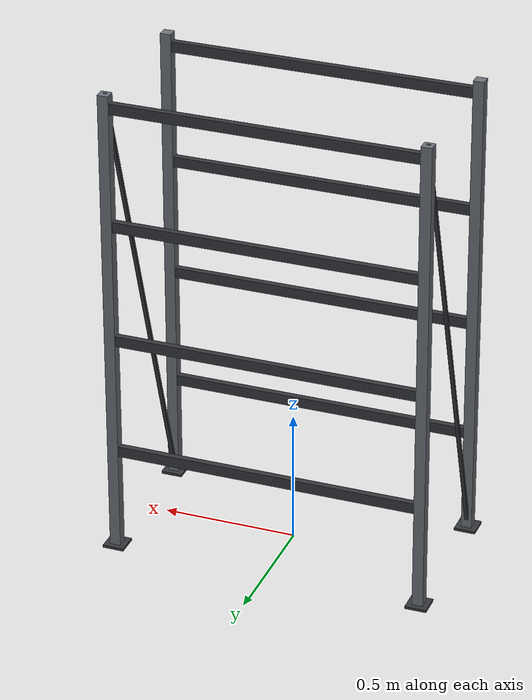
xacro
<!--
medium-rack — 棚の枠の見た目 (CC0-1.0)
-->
<?xml version="1.0"?>
<robot xmlns:xacro="http://www.ros.org/wiki/xacro" name="medium-rack-bay">
  <xacro:arg name="width" default="1.2"/>
  <xacro:arg name="depth" default="0.6"/>
  <xacro:arg name="height" default="1.8"/>
  <xacro:arg name="upright" default="0.04"/>
  <xacro:arg name="beam" default="0.04"/>
  <xacro:arg name="shelf_thickness" default="0.03"/>
  <xacro:arg name="levels" default="4"/>

  <xacro:property name="w" value="$(arg width)"/>
  <xacro:property name="d" value="$(arg depth)"/>
  <xacro:property name="h" value="$(arg height)"/>
  <xacro:property name="u" value="$(arg upright)"/>
  <xacro:property name="bm" value="$(arg beam)"/>
  <xacro:property name="st" value="$(arg shelf_thickness)"/>
  <xacro:property name="n" value="$(arg levels)"/>
  <!-- ブレースは側面の対角。長さも傾きも奥行と高さから出る
       (xurdf 0.6.4 以降。それ以前は atan2 が無く、生成器が渡していた) -->
  <xacro:property name="run" value="${d - u}"/>
  <xacro:property name="brace_len" value="${hypot(run, h)}"/>
  <xacro:property name="tilt" value="${atan2(h, run)}"/>

  <material name="steel"><color rgba="0.42 0.44 0.47 1"/></material>
  <material name="dark"><color rgba="0.20 0.21 0.23 1"/></material>

  <link name="bay"/>

  <xacro:macro name="box_part" params="name size xyz rpy:='0 0 0' mat">
    <link name="${name}">
      <visual>
        <origin xyz="${xyz}" rpy="${rpy}"/>
        <geometry><box size="${size}"/></geometry>
        <material name="${mat}"/>
      </visual>
    </link>
    <joint name="j_${name}" type="fixed"><parent link="bay"/><child link="${name}"/></joint>
  </xacro:macro>

  <!-- 支柱と足 -->
  <xacro:macro name="corner" params="tag sx sy">
    <xacro:box_part name="upright_${tag}" size="${u} ${u} ${h}"
                    xyz="${sx * (w/2 - u/2)} ${sy * (d/2 - u/2)} ${h/2}" mat="steel"/>
    <xacro:box_part name="foot_${tag}" size="${u*2} ${u*2} ${u/4}"
                    xyz="${sx * (w/2 - u/2)} ${sy * (d/2 - u/2)} ${u/8}" mat="dark"/>
  </xacro:macro>
  <xacro:corner tag="0" sx="-1" sy="-1"/>
  <xacro:corner tag="1" sx="1" sy="-1"/>
  <xacro:corner tag="2" sx="1" sy="1"/>
  <xacro:corner tag="3" sx="-1" sy="1"/>

  <!-- 側面のブレース -->
  <xacro:box_part name="brace_l" size="${u/3} ${brace_len} ${u/3}"
                  xyz="${-w/2 + u/2} 0 ${h/2}" rpy="${tilt} 0 0" mat="dark"/>
  <xacro:box_part name="brace_r" size="${u/3} ${brace_len} ${u/3}"
                  xyz="${w/2 - u/2} 0 ${h/2}" rpy="${tilt} 0 0" mat="dark"/>

  <!-- 各段のビーム (前後 2 本)。xacro にループは無いので再帰マクロ -->
  <xacro:macro name="beams" params="i n">
    <xacro:if value="${i &lt;= n}">
      <xacro:property name="top" value="${h * i / n}"/>
      <xacro:box_part name="beam${i}f" size="${w - 2*u} ${u*0.6} ${bm}"
                      xyz="0 ${-d/2 + u/2} ${top - st - bm/2}" mat="dark"/>
      <xacro:box_part name="beam${i}b" size="${w - 2*u} ${u*0.6} ${bm}"
                      xyz="0 ${d/2 - u/2} ${top - st - bm/2}" mat="dark"/>
      <xacro:beams i="${i+1}" n="${n}"/>
    </xacro:if>
  </xacro:macro>
  <xacro:beams i="1" n="${n}"/>
</robot>
